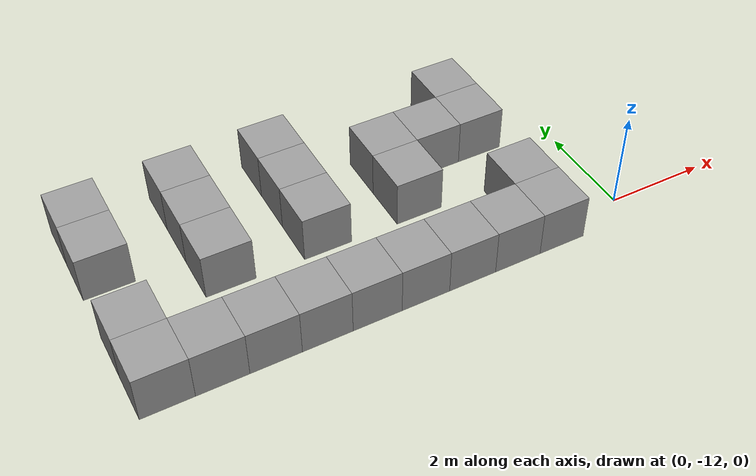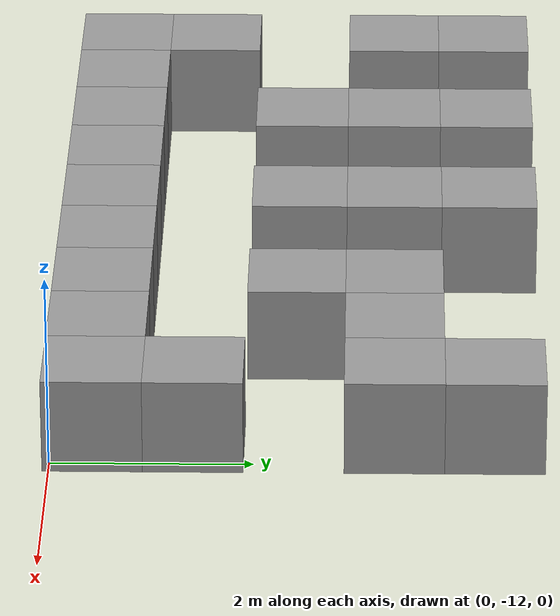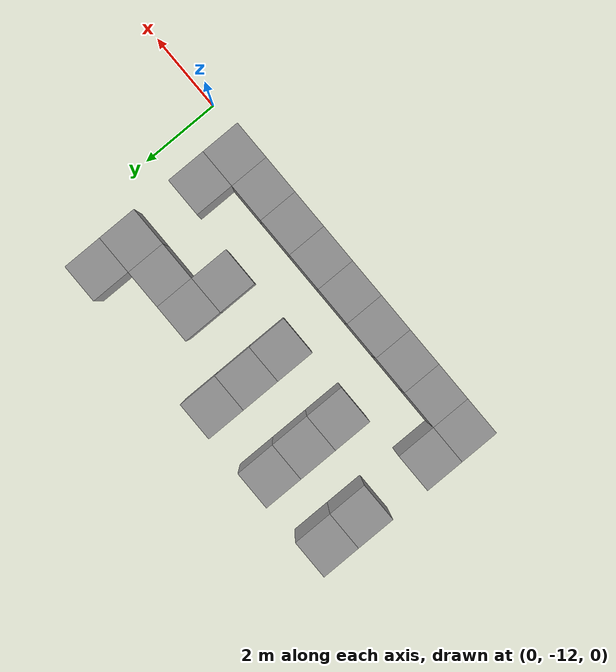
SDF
<sdf version="1.7">
 <model name="maze1">
  <link name="link_1_clone_127">
   <inertial>
    <mass>1</mass>
    <inertia>
     <ixx>0.166667</ixx>
     <ixy>0</ixy>
     <ixz>0</ixz>
     <iyy>0.166667</iyy>
     <iyz>0</iyz>
     <izz>0.166667</izz>
    </inertia>
   </inertial>
   <pose>-7.24618 -7.62535 -0 0 -0 0</pose>
   <visual name="visual">
    <geometry><box><size>1 1 1</size></box></geometry>
    <material>
     <lighting>1</lighting>
     <script><uri>file://media/materials/scripts/gazebo.material</uri><name>Gazebo/Grey</name></script>
     <shader type="pixel"><normal_map>__default__</normal_map></shader>
     <ambient>0.3 0.3 0.3 1</ambient>
     <diffuse>0.7 0.7 0.7 1</diffuse>
     <specular>0.01 0.01 0.01 1</specular>
     <emissive>0 0 0 1</emissive>
    </material>
   </visual>
   <collision name="collision">
    <geometry><box><size>1 1 1</size></box></geometry>
    <surface>
     <friction>
      <ode><mu>1</mu><mu2>1</mu2><fdir1>0 0 0</fdir1><slip1>0</slip1><slip2>0</slip2></ode>
      <torsional>
       <coefficient>1</coefficient>
       <patch_radius>0</patch_radius>
       <surface_radius>0</surface_radius>
       <use_patch_radius>1</use_patch_radius>
       <ode><slip>0</slip></ode>
      </torsional>
     </friction>
     <bounce><restitution_coefficient>0</restitution_coefficient><threshold>1e+06</threshold></bounce>
     <contact>
      <collide_without_contact>0</collide_without_contact>
      <collide_without_contact_bitmask>1</collide_without_contact_bitmask>
      <collide_bitmask>1</collide_bitmask>
      <ode>
       <soft_cfm>0</soft_cfm>
       <soft_erp>0.2</soft_erp>
       <kp>1e+13</kp>
       <kd>1</kd>
       <max_vel>0.01</max_vel>
       <min_depth>0</min_depth>
      </ode>
      <bullet>
       <split_impulse>1</split_impulse>
       <split_impulse_penetration_threshold>-0.01</split_impulse_penetration_threshold>
       <soft_cfm>0</soft_cfm>
       <soft_erp>0.2</soft_erp>
       <kp>1e+13</kp>
       <kd>1</kd>
      </bullet>
     </contact>
    </surface>
   </collision>
  </link>
  <link name="link_1_clone_128">
   <inertial>
    <mass>1</mass>
    <inertia>
     <ixx>0.166667</ixx>
     <ixy>0</ixy>
     <ixz>0</ixz>
     <iyy>0.166667</iyy>
     <iyz>0</iyz>
     <izz>0.166667</izz>
    </inertia>
   </inertial>
   <pose>-7.24618 -8.62535 -0 0 -0 0</pose>
   <visual name="visual">
    <geometry><box><size>1 1 1</size></box></geometry>
    <material>
     <lighting>1</lighting>
     <script><uri>file://media/materials/scripts/gazebo.material</uri><name>Gazebo/Grey</name></script>
     <shader type="pixel"><normal_map>__default__</normal_map></shader>
     <ambient>0.3 0.3 0.3 1</ambient>
     <diffuse>0.7 0.7 0.7 1</diffuse>
     <specular>0.01 0.01 0.01 1</specular>
     <emissive>0 0 0 1</emissive>
    </material>
   </visual>
   <collision name="collision">
    <geometry><box><size>1 1 1</size></box></geometry>
    <surface>
     <friction>
      <ode><mu>1</mu><mu2>1</mu2><fdir1>0 0 0</fdir1><slip1>0</slip1><slip2>0</slip2></ode>
      <torsional>
       <coefficient>1</coefficient>
       <patch_radius>0</patch_radius>
       <surface_radius>0</surface_radius>
       <use_patch_radius>1</use_patch_radius>
       <ode><slip>0</slip></ode>
      </torsional>
     </friction>
     <bounce><restitution_coefficient>0</restitution_coefficient><threshold>1e+06</threshold></bounce>
     <contact>
      <collide_without_contact>0</collide_without_contact>
      <collide_without_contact_bitmask>1</collide_without_contact_bitmask>
      <collide_bitmask>1</collide_bitmask>
      <ode>
       <soft_cfm>0</soft_cfm>
       <soft_erp>0.2</soft_erp>
       <kp>1e+13</kp>
       <kd>1</kd>
       <max_vel>0.01</max_vel>
       <min_depth>0</min_depth>
      </ode>
      <bullet>
       <split_impulse>1</split_impulse>
       <split_impulse_penetration_threshold>-0.01</split_impulse_penetration_threshold>
       <soft_cfm>0</soft_cfm>
       <soft_erp>0.2</soft_erp>
       <kp>1e+13</kp>
       <kd>1</kd>
      </bullet>
     </contact>
    </surface>
   </collision>
  </link>
  <link name="link_1_clone_129">
   <inertial>
    <mass>1</mass>
    <inertia>
     <ixx>0.166667</ixx>
     <ixy>0</ixy>
     <ixz>0</ixz>
     <iyy>0.166667</iyy>
     <iyz>0</iyz>
     <izz>0.166667</izz>
    </inertia>
   </inertial>
   <pose>-7.24618 -9.62535 -0 0 -0 0</pose>
   <visual name="visual">
    <geometry><box><size>1 1 1</size></box></geometry>
    <material>
     <lighting>1</lighting>
     <script><uri>file://media/materials/scripts/gazebo.material</uri><name>Gazebo/Grey</name></script>
     <shader type="pixel"><normal_map>__default__</normal_map></shader>
     <ambient>0.3 0.3 0.3 1</ambient>
     <diffuse>0.7 0.7 0.7 1</diffuse>
     <specular>0.01 0.01 0.01 1</specular>
     <emissive>0 0 0 1</emissive>
    </material>
   </visual>
   <collision name="collision">
    <geometry><box><size>1 1 1</size></box></geometry>
    <surface>
     <friction>
      <ode><mu>1</mu><mu2>1</mu2><fdir1>0 0 0</fdir1><slip1>0</slip1><slip2>0</slip2></ode>
      <torsional>
       <coefficient>1</coefficient>
       <patch_radius>0</patch_radius>
       <surface_radius>0</surface_radius>
       <use_patch_radius>1</use_patch_radius>
       <ode><slip>0</slip></ode>
      </torsional>
     </friction>
     <bounce><restitution_coefficient>0</restitution_coefficient><threshold>1e+06</threshold></bounce>
     <contact>
      <collide_without_contact>0</collide_without_contact>
      <collide_without_contact_bitmask>1</collide_without_contact_bitmask>
      <collide_bitmask>1</collide_bitmask>
      <ode>
       <soft_cfm>0</soft_cfm>
       <soft_erp>0.2</soft_erp>
       <kp>1e+13</kp>
       <kd>1</kd>
       <max_vel>0.01</max_vel>
       <min_depth>0</min_depth>
      </ode>
      <bullet>
       <split_impulse>1</split_impulse>
       <split_impulse_penetration_threshold>-0.01</split_impulse_penetration_threshold>
       <soft_cfm>0</soft_cfm>
       <soft_erp>0.2</soft_erp>
       <kp>1e+13</kp>
       <kd>1</kd>
      </bullet>
     </contact>
    </surface>
   </collision>
  </link>
  <link name="link_1_clone_131">
   <inertial>
    <mass>1</mass>
    <inertia>
     <ixx>0.166667</ixx>
     <ixy>0</ixy>
     <ixz>0</ixz>
     <iyy>0.166667</iyy>
     <iyz>0</iyz>
     <izz>0.166667</izz>
    </inertia>
   </inertial>
   <pose>-5.24618 -9.62535 -0 0 -0 0</pose>
   <visual name="visual">
    <geometry><box><size>1 1 1</size></box></geometry>
    <material>
     <lighting>1</lighting>
     <script><uri>file://media/materials/scripts/gazebo.material</uri><name>Gazebo/Grey</name></script>
     <shader type="pixel"><normal_map>__default__</normal_map></shader>
     <ambient>0.3 0.3 0.3 1</ambient>
     <diffuse>0.7 0.7 0.7 1</diffuse>
     <specular>0.01 0.01 0.01 1</specular>
     <emissive>0 0 0 1</emissive>
    </material>
   </visual>
   <collision name="collision">
    <geometry><box><size>1 1 1</size></box></geometry>
    <surface>
     <friction>
      <ode><mu>1</mu><mu2>1</mu2><fdir1>0 0 0</fdir1><slip1>0</slip1><slip2>0</slip2></ode>
      <torsional>
       <coefficient>1</coefficient>
       <patch_radius>0</patch_radius>
       <surface_radius>0</surface_radius>
       <use_patch_radius>1</use_patch_radius>
       <ode><slip>0</slip></ode>
      </torsional>
     </friction>
     <bounce><restitution_coefficient>0</restitution_coefficient><threshold>1e+06</threshold></bounce>
     <contact>
      <collide_without_contact>0</collide_without_contact>
      <collide_without_contact_bitmask>1</collide_without_contact_bitmask>
      <collide_bitmask>1</collide_bitmask>
      <ode>
       <soft_cfm>0</soft_cfm>
       <soft_erp>0.2</soft_erp>
       <kp>1e+13</kp>
       <kd>1</kd>
       <max_vel>0.01</max_vel>
       <min_depth>0</min_depth>
      </ode>
      <bullet>
       <split_impulse>1</split_impulse>
       <split_impulse_penetration_threshold>-0.01</split_impulse_penetration_threshold>
       <soft_cfm>0</soft_cfm>
       <soft_erp>0.2</soft_erp>
       <kp>1e+13</kp>
       <kd>1</kd>
      </bullet>
     </contact>
    </surface>
   </collision>
  </link>
  <link name="link_1_clone_132">
   <inertial>
    <mass>1</mass>
    <inertia>
     <ixx>0.166667</ixx>
     <ixy>0</ixy>
     <ixz>0</ixz>
     <iyy>0.166667</iyy>
     <iyz>0</iyz>
     <izz>0.166667</izz>
    </inertia>
   </inertial>
   <pose>-5.24618 -8.62535 -0 0 -0 0</pose>
   <visual name="visual">
    <geometry><box><size>1 1 1</size></box></geometry>
    <material>
     <lighting>1</lighting>
     <script><uri>file://media/materials/scripts/gazebo.material</uri><name>Gazebo/Grey</name></script>
     <shader type="pixel"><normal_map>__default__</normal_map></shader>
     <ambient>0.3 0.3 0.3 1</ambient>
     <diffuse>0.7 0.7 0.7 1</diffuse>
     <specular>0.01 0.01 0.01 1</specular>
     <emissive>0 0 0 1</emissive>
    </material>
   </visual>
   <collision name="collision">
    <geometry><box><size>1 1 1</size></box></geometry>
    <surface>
     <friction>
      <ode><mu>1</mu><mu2>1</mu2><fdir1>0 0 0</fdir1><slip1>0</slip1><slip2>0</slip2></ode>
      <torsional>
       <coefficient>1</coefficient>
       <patch_radius>0</patch_radius>
       <surface_radius>0</surface_radius>
       <use_patch_radius>1</use_patch_radius>
       <ode><slip>0</slip></ode>
      </torsional>
     </friction>
     <bounce><restitution_coefficient>0</restitution_coefficient><threshold>1e+06</threshold></bounce>
     <contact>
      <collide_without_contact>0</collide_without_contact>
      <collide_without_contact_bitmask>1</collide_without_contact_bitmask>
      <collide_bitmask>1</collide_bitmask>
      <ode>
       <soft_cfm>0</soft_cfm>
       <soft_erp>0.2</soft_erp>
       <kp>1e+13</kp>
       <kd>1</kd>
       <max_vel>0.01</max_vel>
       <min_depth>0</min_depth>
      </ode>
      <bullet>
       <split_impulse>1</split_impulse>
       <split_impulse_penetration_threshold>-0.01</split_impulse_penetration_threshold>
       <soft_cfm>0</soft_cfm>
       <soft_erp>0.2</soft_erp>
       <kp>1e+13</kp>
       <kd>1</kd>
      </bullet>
     </contact>
    </surface>
   </collision>
  </link>
  <link name="link_1_clone_197">
   <inertial>
    <mass>1</mass>
    <inertia>
     <ixx>0.166667</ixx>
     <ixy>0</ixy>
     <ixz>0</ixz>
     <iyy>0.166667</iyy>
     <iyz>0</iyz>
     <izz>0.166667</izz>
    </inertia>
   </inertial>
   <pose>-1.24618 -7.62535 -0 0 -0 0</pose>
   <visual name="visual">
    <geometry><box><size>1 1 1</size></box></geometry>
    <material>
     <lighting>1</lighting>
     <script><uri>file://media/materials/scripts/gazebo.material</uri><name>Gazebo/Grey</name></script>
     <shader type="pixel"><normal_map>__default__</normal_map></shader>
     <ambient>0.3 0.3 0.3 1</ambient>
     <diffuse>0.7 0.7 0.7 1</diffuse>
     <specular>0.01 0.01 0.01 1</specular>
     <emissive>0 0 0 1</emissive>
    </material>
   </visual>
   <collision name="collision">
    <geometry><box><size>1 1 1</size></box></geometry>
    <surface>
     <friction>
      <ode><mu>1</mu><mu2>1</mu2><fdir1>0 0 0</fdir1><slip1>0</slip1><slip2>0</slip2></ode>
      <torsional>
       <coefficient>1</coefficient>
       <patch_radius>0</patch_radius>
       <surface_radius>0</surface_radius>
       <use_patch_radius>1</use_patch_radius>
       <ode><slip>0</slip></ode>
      </torsional>
     </friction>
     <bounce><restitution_coefficient>0</restitution_coefficient><threshold>1e+06</threshold></bounce>
     <contact>
      <collide_without_contact>0</collide_without_contact>
      <collide_without_contact_bitmask>1</collide_without_contact_bitmask>
      <collide_bitmask>1</collide_bitmask>
      <ode>
       <soft_cfm>0</soft_cfm>
       <soft_erp>0.2</soft_erp>
       <kp>1e+13</kp>
       <kd>1</kd>
       <max_vel>0.01</max_vel>
       <min_depth>0</min_depth>
      </ode>
      <bullet>
       <split_impulse>1</split_impulse>
       <split_impulse_penetration_threshold>-0.01</split_impulse_penetration_threshold>
       <soft_cfm>0</soft_cfm>
       <soft_erp>0.2</soft_erp>
       <kp>1e+13</kp>
       <kd>1</kd>
      </bullet>
     </contact>
    </surface>
   </collision>
  </link>
  <link name="link_1_clone_198">
   <inertial>
    <mass>1</mass>
    <inertia>
     <ixx>0.166667</ixx>
     <ixy>0</ixy>
     <ixz>0</ixz>
     <iyy>0.166667</iyy>
     <iyz>0</iyz>
     <izz>0.166667</izz>
    </inertia>
   </inertial>
   <pose>-1.24618 -8.62535 -0 0 -0 0</pose>
   <visual name="visual">
    <geometry><box><size>1 1 1</size></box></geometry>
    <material>
     <lighting>1</lighting>
     <script><uri>file://media/materials/scripts/gazebo.material</uri><name>Gazebo/Grey</name></script>
     <shader type="pixel"><normal_map>__default__</normal_map></shader>
     <ambient>0.3 0.3 0.3 1</ambient>
     <diffuse>0.7 0.7 0.7 1</diffuse>
     <specular>0.01 0.01 0.01 1</specular>
     <emissive>0 0 0 1</emissive>
    </material>
   </visual>
   <collision name="collision">
    <geometry><box><size>1 1 1</size></box></geometry>
    <surface>
     <friction>
      <ode><mu>1</mu><mu2>1</mu2><fdir1>0 0 0</fdir1><slip1>0</slip1><slip2>0</slip2></ode>
      <torsional>
       <coefficient>1</coefficient>
       <patch_radius>0</patch_radius>
       <surface_radius>0</surface_radius>
       <use_patch_radius>1</use_patch_radius>
       <ode><slip>0</slip></ode>
      </torsional>
     </friction>
     <bounce><restitution_coefficient>0</restitution_coefficient><threshold>1e+06</threshold></bounce>
     <contact>
      <collide_without_contact>0</collide_without_contact>
      <collide_without_contact_bitmask>1</collide_without_contact_bitmask>
      <collide_bitmask>1</collide_bitmask>
      <ode>
       <soft_cfm>0</soft_cfm>
       <soft_erp>0.2</soft_erp>
       <kp>1e+13</kp>
       <kd>1</kd>
       <max_vel>0.01</max_vel>
       <min_depth>0</min_depth>
      </ode>
      <bullet>
       <split_impulse>1</split_impulse>
       <split_impulse_penetration_threshold>-0.01</split_impulse_penetration_threshold>
       <soft_cfm>0</soft_cfm>
       <soft_erp>0.2</soft_erp>
       <kp>1e+13</kp>
       <kd>1</kd>
      </bullet>
     </contact>
    </surface>
   </collision>
  </link>
  <link name="link_1_clone_199">
   <inertial>
    <mass>1</mass>
    <inertia>
     <ixx>0.166667</ixx>
     <ixy>0</ixy>
     <ixz>0</ixz>
     <iyy>0.166667</iyy>
     <iyz>0</iyz>
     <izz>0.166667</izz>
    </inertia>
   </inertial>
   <pose>-1.24618 -10.6254 -0 0 -0 0</pose>
   <visual name="visual">
    <geometry><box><size>1 1 1</size></box></geometry>
    <material>
     <lighting>1</lighting>
     <script><uri>file://media/materials/scripts/gazebo.material</uri><name>Gazebo/Grey</name></script>
     <shader type="pixel"><normal_map>__default__</normal_map></shader>
     <ambient>0.3 0.3 0.3 1</ambient>
     <diffuse>0.7 0.7 0.7 1</diffuse>
     <specular>0.01 0.01 0.01 1</specular>
     <emissive>0 0 0 1</emissive>
    </material>
   </visual>
   <collision name="collision">
    <geometry><box><size>1 1 1</size></box></geometry>
    <surface>
     <friction>
      <ode><mu>1</mu><mu2>1</mu2><fdir1>0 0 0</fdir1><slip1>0</slip1><slip2>0</slip2></ode>
      <torsional>
       <coefficient>1</coefficient>
       <patch_radius>0</patch_radius>
       <surface_radius>0</surface_radius>
       <use_patch_radius>1</use_patch_radius>
       <ode><slip>0</slip></ode>
      </torsional>
     </friction>
     <bounce><restitution_coefficient>0</restitution_coefficient><threshold>1e+06</threshold></bounce>
     <contact>
      <collide_without_contact>0</collide_without_contact>
      <collide_without_contact_bitmask>1</collide_without_contact_bitmask>
      <collide_bitmask>1</collide_bitmask>
      <ode>
       <soft_cfm>0</soft_cfm>
       <soft_erp>0.2</soft_erp>
       <kp>1e+13</kp>
       <kd>1</kd>
       <max_vel>0.01</max_vel>
       <min_depth>0</min_depth>
      </ode>
      <bullet>
       <split_impulse>1</split_impulse>
       <split_impulse_penetration_threshold>-0.01</split_impulse_penetration_threshold>
       <soft_cfm>0</soft_cfm>
       <soft_erp>0.2</soft_erp>
       <kp>1e+13</kp>
       <kd>1</kd>
      </bullet>
     </contact>
    </surface>
   </collision>
  </link>
  <link name="link_1_clone_203">
   <inertial>
    <mass>1</mass>
    <inertia>
     <ixx>0.166667</ixx>
     <ixy>0</ixy>
     <ixz>0</ixz>
     <iyy>0.166667</iyy>
     <iyz>0</iyz>
     <izz>0.166667</izz>
    </inertia>
   </inertial>
   <pose>-2.24618 -8.62535 -0 0 -0 0</pose>
   <visual name="visual">
    <geometry><box><size>1 1 1</size></box></geometry>
    <material>
     <lighting>1</lighting>
     <script><uri>file://media/materials/scripts/gazebo.material</uri><name>Gazebo/Grey</name></script>
     <shader type="pixel"><normal_map>__default__</normal_map></shader>
     <ambient>0.3 0.3 0.3 1</ambient>
     <diffuse>0.7 0.7 0.7 1</diffuse>
     <specular>0.01 0.01 0.01 1</specular>
     <emissive>0 0 0 1</emissive>
    </material>
   </visual>
   <collision name="collision">
    <geometry><box><size>1 1 1</size></box></geometry>
    <surface>
     <friction>
      <ode><mu>1</mu><mu2>1</mu2><fdir1>0 0 0</fdir1><slip1>0</slip1><slip2>0</slip2></ode>
      <torsional>
       <coefficient>1</coefficient>
       <patch_radius>0</patch_radius>
       <surface_radius>0</surface_radius>
       <use_patch_radius>1</use_patch_radius>
       <ode><slip>0</slip></ode>
      </torsional>
     </friction>
     <bounce><restitution_coefficient>0</restitution_coefficient><threshold>1e+06</threshold></bounce>
     <contact>
      <collide_without_contact>0</collide_without_contact>
      <collide_without_contact_bitmask>1</collide_without_contact_bitmask>
      <collide_bitmask>1</collide_bitmask>
      <ode>
       <soft_cfm>0</soft_cfm>
       <soft_erp>0.2</soft_erp>
       <kp>1e+13</kp>
       <kd>1</kd>
       <max_vel>0.01</max_vel>
       <min_depth>0</min_depth>
      </ode>
      <bullet>
       <split_impulse>1</split_impulse>
       <split_impulse_penetration_threshold>-0.01</split_impulse_penetration_threshold>
       <soft_cfm>0</soft_cfm>
       <soft_erp>0.2</soft_erp>
       <kp>1e+13</kp>
       <kd>1</kd>
      </bullet>
     </contact>
    </surface>
   </collision>
  </link>
  <link name="link_1_clone_204">
   <inertial>
    <mass>1</mass>
    <inertia>
     <ixx>0.166667</ixx>
     <ixy>0</ixy>
     <ixz>0</ixz>
     <iyy>0.166667</iyy>
     <iyz>0</iyz>
     <izz>0.166667</izz>
    </inertia>
   </inertial>
   <pose>-3.24618 -8.62535 -0 0 -0 0</pose>
   <visual name="visual">
    <geometry><box><size>1 1 1</size></box></geometry>
    <material>
     <lighting>1</lighting>
     <script><uri>file://media/materials/scripts/gazebo.material</uri><name>Gazebo/Grey</name></script>
     <shader type="pixel"><normal_map>__default__</normal_map></shader>
     <ambient>0.3 0.3 0.3 1</ambient>
     <diffuse>0.7 0.7 0.7 1</diffuse>
     <specular>0.01 0.01 0.01 1</specular>
     <emissive>0 0 0 1</emissive>
    </material>
   </visual>
   <collision name="collision">
    <geometry><box><size>1 1 1</size></box></geometry>
    <surface>
     <friction>
      <ode><mu>1</mu><mu2>1</mu2><fdir1>0 0 0</fdir1><slip1>0</slip1><slip2>0</slip2></ode>
      <torsional>
       <coefficient>1</coefficient>
       <patch_radius>0</patch_radius>
       <surface_radius>0</surface_radius>
       <use_patch_radius>1</use_patch_radius>
       <ode><slip>0</slip></ode>
      </torsional>
     </friction>
     <bounce><restitution_coefficient>0</restitution_coefficient><threshold>1e+06</threshold></bounce>
     <contact>
      <collide_without_contact>0</collide_without_contact>
      <collide_without_contact_bitmask>1</collide_without_contact_bitmask>
      <collide_bitmask>1</collide_bitmask>
      <ode>
       <soft_cfm>0</soft_cfm>
       <soft_erp>0.2</soft_erp>
       <kp>1e+13</kp>
       <kd>1</kd>
       <max_vel>0.01</max_vel>
       <min_depth>0</min_depth>
      </ode>
      <bullet>
       <split_impulse>1</split_impulse>
       <split_impulse_penetration_threshold>-0.01</split_impulse_penetration_threshold>
       <soft_cfm>0</soft_cfm>
       <soft_erp>0.2</soft_erp>
       <kp>1e+13</kp>
       <kd>1</kd>
      </bullet>
     </contact>
    </surface>
   </collision>
  </link>
  <link name="link_1_clone_205">
   <inertial>
    <mass>1</mass>
    <inertia>
     <ixx>0.166667</ixx>
     <ixy>0</ixy>
     <ixz>0</ixz>
     <iyy>0.166667</iyy>
     <iyz>0</iyz>
     <izz>0.166667</izz>
    </inertia>
   </inertial>
   <pose>-3.24618 -9.62535 -0 0 -0 0</pose>
   <visual name="visual">
    <geometry><box><size>1 1 1</size></box></geometry>
    <material>
     <lighting>1</lighting>
     <script><uri>file://media/materials/scripts/gazebo.material</uri><name>Gazebo/Grey</name></script>
     <shader type="pixel"><normal_map>__default__</normal_map></shader>
     <ambient>0.3 0.3 0.3 1</ambient>
     <diffuse>0.7 0.7 0.7 1</diffuse>
     <specular>0.01 0.01 0.01 1</specular>
     <emissive>0 0 0 1</emissive>
    </material>
   </visual>
   <collision name="collision">
    <geometry><box><size>1 1 1</size></box></geometry>
    <surface>
     <friction>
      <ode><mu>1</mu><mu2>1</mu2><fdir1>0 0 0</fdir1><slip1>0</slip1><slip2>0</slip2></ode>
      <torsional>
       <coefficient>1</coefficient>
       <patch_radius>0</patch_radius>
       <surface_radius>0</surface_radius>
       <use_patch_radius>1</use_patch_radius>
       <ode><slip>0</slip></ode>
      </torsional>
     </friction>
     <bounce><restitution_coefficient>0</restitution_coefficient><threshold>1e+06</threshold></bounce>
     <contact>
      <collide_without_contact>0</collide_without_contact>
      <collide_without_contact_bitmask>1</collide_without_contact_bitmask>
      <collide_bitmask>1</collide_bitmask>
      <ode>
       <soft_cfm>0</soft_cfm>
       <soft_erp>0.2</soft_erp>
       <kp>1e+13</kp>
       <kd>1</kd>
       <max_vel>0.01</max_vel>
       <min_depth>0</min_depth>
      </ode>
      <bullet>
       <split_impulse>1</split_impulse>
       <split_impulse_penetration_threshold>-0.01</split_impulse_penetration_threshold>
       <soft_cfm>0</soft_cfm>
       <soft_erp>0.2</soft_erp>
       <kp>1e+13</kp>
       <kd>1</kd>
      </bullet>
     </contact>
    </surface>
   </collision>
  </link>
  <link name="link_1_clone_214">
   <inertial>
    <mass>1</mass>
    <inertia>
     <ixx>0.166667</ixx>
     <ixy>0</ixy>
     <ixz>0</ixz>
     <iyy>0.166667</iyy>
     <iyz>0</iyz>
     <izz>0.166667</izz>
    </inertia>
   </inertial>
   <pose>-5.24618 -7.62535 -0 0 -0 0</pose>
   <visual name="visual">
    <geometry><box><size>1 1 1</size></box></geometry>
    <material>
     <lighting>1</lighting>
     <script><uri>file://media/materials/scripts/gazebo.material</uri><name>Gazebo/Grey</name></script>
     <shader type="pixel"><normal_map>__default__</normal_map></shader>
     <ambient>0.3 0.3 0.3 1</ambient>
     <diffuse>0.7 0.7 0.7 1</diffuse>
     <specular>0.01 0.01 0.01 1</specular>
     <emissive>0 0 0 1</emissive>
    </material>
   </visual>
   <collision name="collision">
    <geometry><box><size>1 1 1</size></box></geometry>
    <surface>
     <friction>
      <ode><mu>1</mu><mu2>1</mu2><fdir1>0 0 0</fdir1><slip1>0</slip1><slip2>0</slip2></ode>
      <torsional>
       <coefficient>1</coefficient>
       <patch_radius>0</patch_radius>
       <surface_radius>0</surface_radius>
       <use_patch_radius>1</use_patch_radius>
       <ode><slip>0</slip></ode>
      </torsional>
     </friction>
     <bounce><restitution_coefficient>0</restitution_coefficient><threshold>1e+06</threshold></bounce>
     <contact>
      <collide_without_contact>0</collide_without_contact>
      <collide_without_contact_bitmask>1</collide_without_contact_bitmask>
      <collide_bitmask>1</collide_bitmask>
      <ode>
       <soft_cfm>0</soft_cfm>
       <soft_erp>0.2</soft_erp>
       <kp>1e+13</kp>
       <kd>1</kd>
       <max_vel>0.01</max_vel>
       <min_depth>0</min_depth>
      </ode>
      <bullet>
       <split_impulse>1</split_impulse>
       <split_impulse_penetration_threshold>-0.01</split_impulse_penetration_threshold>
       <soft_cfm>0</soft_cfm>
       <soft_erp>0.2</soft_erp>
       <kp>1e+13</kp>
       <kd>1</kd>
      </bullet>
     </contact>
    </surface>
   </collision>
  </link>
  <link name="link_1_clone_32">
   <inertial>
    <mass>1</mass>
    <inertia>
     <ixx>0.166667</ixx>
     <ixy>0</ixy>
     <ixz>0</ixz>
     <iyy>0.166667</iyy>
     <iyz>0</iyz>
     <izz>0.166667</izz>
    </inertia>
   </inertial>
   <pose>-9.24618 -7.62535 -0 0 -0 0</pose>
   <visual name="visual">
    <geometry><box><size>1 1 1</size></box></geometry>
    <material>
     <lighting>1</lighting>
     <script><uri>file://media/materials/scripts/gazebo.material</uri><name>Gazebo/Grey</name></script>
     <shader type="pixel"><normal_map>__default__</normal_map></shader>
     <ambient>0.3 0.3 0.3 1</ambient>
     <diffuse>0.7 0.7 0.7 1</diffuse>
     <specular>0.01 0.01 0.01 1</specular>
     <emissive>0 0 0 1</emissive>
    </material>
   </visual>
   <collision name="collision">
    <geometry><box><size>1 1 1</size></box></geometry>
    <surface>
     <friction>
      <ode><mu>1</mu><mu2>1</mu2><fdir1>0 0 0</fdir1><slip1>0</slip1><slip2>0</slip2></ode>
      <torsional>
       <coefficient>1</coefficient>
       <patch_radius>0</patch_radius>
       <surface_radius>0</surface_radius>
       <use_patch_radius>1</use_patch_radius>
       <ode><slip>0</slip></ode>
      </torsional>
     </friction>
     <bounce><restitution_coefficient>0</restitution_coefficient><threshold>1e+06</threshold></bounce>
     <contact>
      <collide_without_contact>0</collide_without_contact>
      <collide_without_contact_bitmask>1</collide_without_contact_bitmask>
      <collide_bitmask>1</collide_bitmask>
      <ode>
       <soft_cfm>0</soft_cfm>
       <soft_erp>0.2</soft_erp>
       <kp>1e+13</kp>
       <kd>1</kd>
       <max_vel>0.01</max_vel>
       <min_depth>0</min_depth>
      </ode>
      <bullet>
       <split_impulse>1</split_impulse>
       <split_impulse_penetration_threshold>-0.01</split_impulse_penetration_threshold>
       <soft_cfm>0</soft_cfm>
       <soft_erp>0.2</soft_erp>
       <kp>1e+13</kp>
       <kd>1</kd>
      </bullet>
     </contact>
    </surface>
   </collision>
  </link>
  <link name="link_1_clone_33">
   <inertial>
    <mass>1</mass>
    <inertia>
     <ixx>0.166667</ixx>
     <ixy>0</ixy>
     <ixz>0</ixz>
     <iyy>0.166667</iyy>
     <iyz>0</iyz>
     <izz>0.166667</izz>
    </inertia>
   </inertial>
   <pose>-9.24618 -8.62535 -0 0 -0 0</pose>
   <visual name="visual">
    <geometry><box><size>1 1 1</size></box></geometry>
    <material>
     <lighting>1</lighting>
     <script><uri>file://media/materials/scripts/gazebo.material</uri><name>Gazebo/Grey</name></script>
     <shader type="pixel"><normal_map>__default__</normal_map></shader>
     <ambient>0.3 0.3 0.3 1</ambient>
     <diffuse>0.7 0.7 0.7 1</diffuse>
     <specular>0.01 0.01 0.01 1</specular>
     <emissive>0 0 0 1</emissive>
    </material>
   </visual>
   <collision name="collision">
    <geometry><box><size>1 1 1</size></box></geometry>
    <surface>
     <friction>
      <ode><mu>1</mu><mu2>1</mu2><fdir1>0 0 0</fdir1><slip1>0</slip1><slip2>0</slip2></ode>
      <torsional>
       <coefficient>1</coefficient>
       <patch_radius>0</patch_radius>
       <surface_radius>0</surface_radius>
       <use_patch_radius>1</use_patch_radius>
       <ode><slip>0</slip></ode>
      </torsional>
     </friction>
     <bounce><restitution_coefficient>0</restitution_coefficient><threshold>1e+06</threshold></bounce>
     <contact>
      <collide_without_contact>0</collide_without_contact>
      <collide_without_contact_bitmask>1</collide_without_contact_bitmask>
      <collide_bitmask>1</collide_bitmask>
      <ode>
       <soft_cfm>0</soft_cfm>
       <soft_erp>0.2</soft_erp>
       <kp>1e+13</kp>
       <kd>1</kd>
       <max_vel>0.01</max_vel>
       <min_depth>0</min_depth>
      </ode>
      <bullet>
       <split_impulse>1</split_impulse>
       <split_impulse_penetration_threshold>-0.01</split_impulse_penetration_threshold>
       <soft_cfm>0</soft_cfm>
       <soft_erp>0.2</soft_erp>
       <kp>1e+13</kp>
       <kd>1</kd>
      </bullet>
     </contact>
    </surface>
   </collision>
  </link>
  <link name="link_1_clone_34">
   <inertial>
    <mass>1</mass>
    <inertia>
     <ixx>0.166667</ixx>
     <ixy>0</ixy>
     <ixz>0</ixz>
     <iyy>0.166667</iyy>
     <iyz>0</iyz>
     <izz>0.166667</izz>
    </inertia>
   </inertial>
   <pose>-9.24618 -10.6253 -0 0 -0 0</pose>
   <visual name="visual">
    <geometry><box><size>1 1 1</size></box></geometry>
    <material>
     <lighting>1</lighting>
     <script><uri>file://media/materials/scripts/gazebo.material</uri><name>Gazebo/Grey</name></script>
     <shader type="pixel"><normal_map>__default__</normal_map></shader>
     <ambient>0.3 0.3 0.3 1</ambient>
     <diffuse>0.7 0.7 0.7 1</diffuse>
     <specular>0.01 0.01 0.01 1</specular>
     <emissive>0 0 0 1</emissive>
    </material>
   </visual>
   <collision name="collision">
    <geometry><box><size>1 1 1</size></box></geometry>
    <surface>
     <friction>
      <ode><mu>1</mu><mu2>1</mu2><fdir1>0 0 0</fdir1><slip1>0</slip1><slip2>0</slip2></ode>
      <torsional>
       <coefficient>1</coefficient>
       <patch_radius>0</patch_radius>
       <surface_radius>0</surface_radius>
       <use_patch_radius>1</use_patch_radius>
       <ode><slip>0</slip></ode>
      </torsional>
     </friction>
     <bounce><restitution_coefficient>0</restitution_coefficient><threshold>1e+06</threshold></bounce>
     <contact>
      <collide_without_contact>0</collide_without_contact>
      <collide_without_contact_bitmask>1</collide_without_contact_bitmask>
      <collide_bitmask>1</collide_bitmask>
      <ode>
       <soft_cfm>0</soft_cfm>
       <soft_erp>0.2</soft_erp>
       <kp>1e+13</kp>
       <kd>1</kd>
       <max_vel>0.01</max_vel>
       <min_depth>0</min_depth>
      </ode>
      <bullet>
       <split_impulse>1</split_impulse>
       <split_impulse_penetration_threshold>-0.01</split_impulse_penetration_threshold>
       <soft_cfm>0</soft_cfm>
       <soft_erp>0.2</soft_erp>
       <kp>1e+13</kp>
       <kd>1</kd>
      </bullet>
     </contact>
    </surface>
   </collision>
  </link>
  <link name="link_1_clone_35">
   <inertial>
    <mass>1</mass>
    <inertia>
     <ixx>0.166667</ixx>
     <ixy>0</ixy>
     <ixz>0</ixz>
     <iyy>0.166667</iyy>
     <iyz>0</iyz>
     <izz>0.166667</izz>
    </inertia>
   </inertial>
   <pose>-8.24618 -11.6253 -0 0 -0 0</pose>
   <visual name="visual">
    <geometry><box><size>1 1 1</size></box></geometry>
    <material>
     <lighting>1</lighting>
     <script><uri>file://media/materials/scripts/gazebo.material</uri><name>Gazebo/Grey</name></script>
     <shader type="pixel"><normal_map>__default__</normal_map></shader>
     <ambient>0.3 0.3 0.3 1</ambient>
     <diffuse>0.7 0.7 0.7 1</diffuse>
     <specular>0.01 0.01 0.01 1</specular>
     <emissive>0 0 0 1</emissive>
    </material>
   </visual>
   <collision name="collision">
    <geometry><box><size>1 1 1</size></box></geometry>
    <surface>
     <friction>
      <ode><mu>1</mu><mu2>1</mu2><fdir1>0 0 0</fdir1><slip1>0</slip1><slip2>0</slip2></ode>
      <torsional>
       <coefficient>1</coefficient>
       <patch_radius>0</patch_radius>
       <surface_radius>0</surface_radius>
       <use_patch_radius>1</use_patch_radius>
       <ode><slip>0</slip></ode>
      </torsional>
     </friction>
     <bounce><restitution_coefficient>0</restitution_coefficient><threshold>1e+06</threshold></bounce>
     <contact>
      <collide_without_contact>0</collide_without_contact>
      <collide_without_contact_bitmask>1</collide_without_contact_bitmask>
      <collide_bitmask>1</collide_bitmask>
      <ode>
       <soft_cfm>0</soft_cfm>
       <soft_erp>0.2</soft_erp>
       <kp>1e+13</kp>
       <kd>1</kd>
       <max_vel>0.01</max_vel>
       <min_depth>0</min_depth>
      </ode>
      <bullet>
       <split_impulse>1</split_impulse>
       <split_impulse_penetration_threshold>-0.01</split_impulse_penetration_threshold>
       <soft_cfm>0</soft_cfm>
       <soft_erp>0.2</soft_erp>
       <kp>1e+13</kp>
       <kd>1</kd>
      </bullet>
     </contact>
    </surface>
   </collision>
  </link>
  <link name="link_1_clone_36">
   <inertial>
    <mass>1</mass>
    <inertia>
     <ixx>0.166667</ixx>
     <ixy>0</ixy>
     <ixz>0</ixz>
     <iyy>0.166667</iyy>
     <iyz>0</iyz>
     <izz>0.166667</izz>
    </inertia>
   </inertial>
   <pose>-9.24618 -11.6253 -0 0 -0 0</pose>
   <visual name="visual">
    <geometry><box><size>1 1 1</size></box></geometry>
    <material>
     <lighting>1</lighting>
     <script><uri>file://media/materials/scripts/gazebo.material</uri><name>Gazebo/Grey</name></script>
     <shader type="pixel"><normal_map>__default__</normal_map></shader>
     <ambient>0.3 0.3 0.3 1</ambient>
     <diffuse>0.7 0.7 0.7 1</diffuse>
     <specular>0.01 0.01 0.01 1</specular>
     <emissive>0 0 0 1</emissive>
    </material>
   </visual>
   <collision name="collision">
    <geometry><box><size>1 1 1</size></box></geometry>
    <surface>
     <friction>
      <ode><mu>1</mu><mu2>1</mu2><fdir1>0 0 0</fdir1><slip1>0</slip1><slip2>0</slip2></ode>
      <torsional>
       <coefficient>1</coefficient>
       <patch_radius>0</patch_radius>
       <surface_radius>0</surface_radius>
       <use_patch_radius>1</use_patch_radius>
       <ode><slip>0</slip></ode>
      </torsional>
     </friction>
     <bounce><restitution_coefficient>0</restitution_coefficient><threshold>1e+06</threshold></bounce>
     <contact>
      <collide_without_contact>0</collide_without_contact>
      <collide_without_contact_bitmask>1</collide_without_contact_bitmask>
      <collide_bitmask>1</collide_bitmask>
      <ode>
       <soft_cfm>0</soft_cfm>
       <soft_erp>0.2</soft_erp>
       <kp>1e+13</kp>
       <kd>1</kd>
       <max_vel>0.01</max_vel>
       <min_depth>0</min_depth>
      </ode>
      <bullet>
       <split_impulse>1</split_impulse>
       <split_impulse_penetration_threshold>-0.01</split_impulse_penetration_threshold>
       <soft_cfm>0</soft_cfm>
       <soft_erp>0.2</soft_erp>
       <kp>1e+13</kp>
       <kd>1</kd>
      </bullet>
     </contact>
    </surface>
   </collision>
  </link>
  <link name="link_1_clone_37">
   <inertial>
    <mass>1</mass>
    <inertia>
     <ixx>0.166667</ixx>
     <ixy>0</ixy>
     <ixz>0</ixz>
     <iyy>0.166667</iyy>
     <iyz>0</iyz>
     <izz>0.166667</izz>
    </inertia>
   </inertial>
   <pose>-7.24618 -11.6253 -0 0 -0 0</pose>
   <visual name="visual">
    <geometry><box><size>1 1 1</size></box></geometry>
    <material>
     <lighting>1</lighting>
     <script><uri>file://media/materials/scripts/gazebo.material</uri><name>Gazebo/Grey</name></script>
     <shader type="pixel"><normal_map>__default__</normal_map></shader>
     <ambient>0.3 0.3 0.3 1</ambient>
     <diffuse>0.7 0.7 0.7 1</diffuse>
     <specular>0.01 0.01 0.01 1</specular>
     <emissive>0 0 0 1</emissive>
    </material>
   </visual>
   <collision name="collision">
    <geometry><box><size>1 1 1</size></box></geometry>
    <surface>
     <friction>
      <ode><mu>1</mu><mu2>1</mu2><fdir1>0 0 0</fdir1><slip1>0</slip1><slip2>0</slip2></ode>
      <torsional>
       <coefficient>1</coefficient>
       <patch_radius>0</patch_radius>
       <surface_radius>0</surface_radius>
       <use_patch_radius>1</use_patch_radius>
       <ode><slip>0</slip></ode>
      </torsional>
     </friction>
     <bounce><restitution_coefficient>0</restitution_coefficient><threshold>1e+06</threshold></bounce>
     <contact>
      <collide_without_contact>0</collide_without_contact>
      <collide_without_contact_bitmask>1</collide_without_contact_bitmask>
      <collide_bitmask>1</collide_bitmask>
      <ode>
       <soft_cfm>0</soft_cfm>
       <soft_erp>0.2</soft_erp>
       <kp>1e+13</kp>
       <kd>1</kd>
       <max_vel>0.01</max_vel>
       <min_depth>0</min_depth>
      </ode>
      <bullet>
       <split_impulse>1</split_impulse>
       <split_impulse_penetration_threshold>-0.01</split_impulse_penetration_threshold>
       <soft_cfm>0</soft_cfm>
       <soft_erp>0.2</soft_erp>
       <kp>1e+13</kp>
       <kd>1</kd>
      </bullet>
     </contact>
    </surface>
   </collision>
  </link>
  <link name="link_1_clone_38">
   <inertial>
    <mass>1</mass>
    <inertia>
     <ixx>0.166667</ixx>
     <ixy>0</ixy>
     <ixz>0</ixz>
     <iyy>0.166667</iyy>
     <iyz>0</iyz>
     <izz>0.166667</izz>
    </inertia>
   </inertial>
   <pose>-6.24618 -11.6253 -0 0 -0 0</pose>
   <visual name="visual">
    <geometry><box><size>1 1 1</size></box></geometry>
    <material>
     <lighting>1</lighting>
     <script><uri>file://media/materials/scripts/gazebo.material</uri><name>Gazebo/Grey</name></script>
     <shader type="pixel"><normal_map>__default__</normal_map></shader>
     <ambient>0.3 0.3 0.3 1</ambient>
     <diffuse>0.7 0.7 0.7 1</diffuse>
     <specular>0.01 0.01 0.01 1</specular>
     <emissive>0 0 0 1</emissive>
    </material>
   </visual>
   <collision name="collision">
    <geometry><box><size>1 1 1</size></box></geometry>
    <surface>
     <friction>
      <ode><mu>1</mu><mu2>1</mu2><fdir1>0 0 0</fdir1><slip1>0</slip1><slip2>0</slip2></ode>
      <torsional>
       <coefficient>1</coefficient>
       <patch_radius>0</patch_radius>
       <surface_radius>0</surface_radius>
       <use_patch_radius>1</use_patch_radius>
       <ode><slip>0</slip></ode>
      </torsional>
     </friction>
     <bounce><restitution_coefficient>0</restitution_coefficient><threshold>1e+06</threshold></bounce>
     <contact>
      <collide_without_contact>0</collide_without_contact>
      <collide_without_contact_bitmask>1</collide_without_contact_bitmask>
      <collide_bitmask>1</collide_bitmask>
      <ode>
       <soft_cfm>0</soft_cfm>
       <soft_erp>0.2</soft_erp>
       <kp>1e+13</kp>
       <kd>1</kd>
       <max_vel>0.01</max_vel>
       <min_depth>0</min_depth>
      </ode>
      <bullet>
       <split_impulse>1</split_impulse>
       <split_impulse_penetration_threshold>-0.01</split_impulse_penetration_threshold>
       <soft_cfm>0</soft_cfm>
       <soft_erp>0.2</soft_erp>
       <kp>1e+13</kp>
       <kd>1</kd>
      </bullet>
     </contact>
    </surface>
   </collision>
  </link>
  <link name="link_1_clone_39">
   <inertial>
    <mass>1</mass>
    <inertia>
     <ixx>0.166667</ixx>
     <ixy>0</ixy>
     <ixz>0</ixz>
     <iyy>0.166667</iyy>
     <iyz>0</iyz>
     <izz>0.166667</izz>
    </inertia>
   </inertial>
   <pose>-5.24618 -11.6253 -0 0 -0 0</pose>
   <visual name="visual">
    <geometry><box><size>1 1 1</size></box></geometry>
    <material>
     <lighting>1</lighting>
     <script><uri>file://media/materials/scripts/gazebo.material</uri><name>Gazebo/Grey</name></script>
     <shader type="pixel"><normal_map>__default__</normal_map></shader>
     <ambient>0.3 0.3 0.3 1</ambient>
     <diffuse>0.7 0.7 0.7 1</diffuse>
     <specular>0.01 0.01 0.01 1</specular>
     <emissive>0 0 0 1</emissive>
    </material>
   </visual>
   <collision name="collision">
    <geometry><box><size>1 1 1</size></box></geometry>
    <surface>
     <friction>
      <ode><mu>1</mu><mu2>1</mu2><fdir1>0 0 0</fdir1><slip1>0</slip1><slip2>0</slip2></ode>
      <torsional>
       <coefficient>1</coefficient>
       <patch_radius>0</patch_radius>
       <surface_radius>0</surface_radius>
       <use_patch_radius>1</use_patch_radius>
       <ode><slip>0</slip></ode>
      </torsional>
     </friction>
     <bounce><restitution_coefficient>0</restitution_coefficient><threshold>1e+06</threshold></bounce>
     <contact>
      <collide_without_contact>0</collide_without_contact>
      <collide_without_contact_bitmask>1</collide_without_contact_bitmask>
      <collide_bitmask>1</collide_bitmask>
      <ode>
       <soft_cfm>0</soft_cfm>
       <soft_erp>0.2</soft_erp>
       <kp>1e+13</kp>
       <kd>1</kd>
       <max_vel>0.01</max_vel>
       <min_depth>0</min_depth>
      </ode>
      <bullet>
       <split_impulse>1</split_impulse>
       <split_impulse_penetration_threshold>-0.01</split_impulse_penetration_threshold>
       <soft_cfm>0</soft_cfm>
       <soft_erp>0.2</soft_erp>
       <kp>1e+13</kp>
       <kd>1</kd>
      </bullet>
     </contact>
    </surface>
   </collision>
  </link>
  <link name="link_1_clone_40">
   <inertial>
    <mass>1</mass>
    <inertia>
     <ixx>0.166667</ixx>
     <ixy>0</ixy>
     <ixz>0</ixz>
     <iyy>0.166667</iyy>
     <iyz>0</iyz>
     <izz>0.166667</izz>
    </inertia>
   </inertial>
   <pose>-4.24618 -11.6253 -0 0 -0 0</pose>
   <visual name="visual">
    <geometry><box><size>1 1 1</size></box></geometry>
    <material>
     <lighting>1</lighting>
     <script><uri>file://media/materials/scripts/gazebo.material</uri><name>Gazebo/Grey</name></script>
     <shader type="pixel"><normal_map>__default__</normal_map></shader>
     <ambient>0.3 0.3 0.3 1</ambient>
     <diffuse>0.7 0.7 0.7 1</diffuse>
     <specular>0.01 0.01 0.01 1</specular>
     <emissive>0 0 0 1</emissive>
    </material>
   </visual>
   <collision name="collision">
    <geometry><box><size>1 1 1</size></box></geometry>
    <surface>
     <friction>
      <ode><mu>1</mu><mu2>1</mu2><fdir1>0 0 0</fdir1><slip1>0</slip1><slip2>0</slip2></ode>
      <torsional>
       <coefficient>1</coefficient>
       <patch_radius>0</patch_radius>
       <surface_radius>0</surface_radius>
       <use_patch_radius>1</use_patch_radius>
       <ode><slip>0</slip></ode>
      </torsional>
     </friction>
     <bounce><restitution_coefficient>0</restitution_coefficient><threshold>1e+06</threshold></bounce>
     <contact>
      <collide_without_contact>0</collide_without_contact>
      <collide_without_contact_bitmask>1</collide_without_contact_bitmask>
      <collide_bitmask>1</collide_bitmask>
      <ode>
       <soft_cfm>0</soft_cfm>
       <soft_erp>0.2</soft_erp>
       <kp>1e+13</kp>
       <kd>1</kd>
       <max_vel>0.01</max_vel>
       <min_depth>0</min_depth>
      </ode>
      <bullet>
       <split_impulse>1</split_impulse>
       <split_impulse_penetration_threshold>-0.01</split_impulse_penetration_threshold>
       <soft_cfm>0</soft_cfm>
       <soft_erp>0.2</soft_erp>
       <kp>1e+13</kp>
       <kd>1</kd>
      </bullet>
     </contact>
    </surface>
   </collision>
  </link>
  <link name="link_1_clone_41">
   <inertial>
    <mass>1</mass>
    <inertia>
     <ixx>0.166667</ixx>
     <ixy>0</ixy>
     <ixz>0</ixz>
     <iyy>0.166667</iyy>
     <iyz>0</iyz>
     <izz>0.166667</izz>
    </inertia>
   </inertial>
   <pose>-3.24618 -11.6253 -0 0 -0 0</pose>
   <visual name="visual">
    <geometry><box><size>1 1 1</size></box></geometry>
    <material>
     <lighting>1</lighting>
     <script><uri>file://media/materials/scripts/gazebo.material</uri><name>Gazebo/Grey</name></script>
     <shader type="pixel"><normal_map>__default__</normal_map></shader>
     <ambient>0.3 0.3 0.3 1</ambient>
     <diffuse>0.7 0.7 0.7 1</diffuse>
     <specular>0.01 0.01 0.01 1</specular>
     <emissive>0 0 0 1</emissive>
    </material>
   </visual>
   <collision name="collision">
    <geometry><box><size>1 1 1</size></box></geometry>
    <surface>
     <friction>
      <ode><mu>1</mu><mu2>1</mu2><fdir1>0 0 0</fdir1><slip1>0</slip1><slip2>0</slip2></ode>
      <torsional>
       <coefficient>1</coefficient>
       <patch_radius>0</patch_radius>
       <surface_radius>0</surface_radius>
       <use_patch_radius>1</use_patch_radius>
       <ode><slip>0</slip></ode>
      </torsional>
     </friction>
     <bounce><restitution_coefficient>0</restitution_coefficient><threshold>1e+06</threshold></bounce>
     <contact>
      <collide_without_contact>0</collide_without_contact>
      <collide_without_contact_bitmask>1</collide_without_contact_bitmask>
      <collide_bitmask>1</collide_bitmask>
      <ode>
       <soft_cfm>0</soft_cfm>
       <soft_erp>0.2</soft_erp>
       <kp>1e+13</kp>
       <kd>1</kd>
       <max_vel>0.01</max_vel>
       <min_depth>0</min_depth>
      </ode>
      <bullet>
       <split_impulse>1</split_impulse>
       <split_impulse_penetration_threshold>-0.01</split_impulse_penetration_threshold>
       <soft_cfm>0</soft_cfm>
       <soft_erp>0.2</soft_erp>
       <kp>1e+13</kp>
       <kd>1</kd>
      </bullet>
     </contact>
    </surface>
   </collision>
  </link>
  <link name="link_1_clone_42">
   <inertial>
    <mass>1</mass>
    <inertia>
     <ixx>0.166667</ixx>
     <ixy>0</ixy>
     <ixz>0</ixz>
     <iyy>0.166667</iyy>
     <iyz>0</iyz>
     <izz>0.166667</izz>
    </inertia>
   </inertial>
   <pose>-2.24618 -11.6253 -0 0 -0 0</pose>
   <visual name="visual">
    <geometry><box><size>1 1 1</size></box></geometry>
    <material>
     <lighting>1</lighting>
     <script><uri>file://media/materials/scripts/gazebo.material</uri><name>Gazebo/Grey</name></script>
     <shader type="pixel"><normal_map>__default__</normal_map></shader>
     <ambient>0.3 0.3 0.3 1</ambient>
     <diffuse>0.7 0.7 0.7 1</diffuse>
     <specular>0.01 0.01 0.01 1</specular>
     <emissive>0 0 0 1</emissive>
    </material>
   </visual>
   <collision name="collision">
    <geometry><box><size>1 1 1</size></box></geometry>
    <surface>
     <friction>
      <ode><mu>1</mu><mu2>1</mu2><fdir1>0 0 0</fdir1><slip1>0</slip1><slip2>0</slip2></ode>
      <torsional>
       <coefficient>1</coefficient>
       <patch_radius>0</patch_radius>
       <surface_radius>0</surface_radius>
       <use_patch_radius>1</use_patch_radius>
       <ode><slip>0</slip></ode>
      </torsional>
     </friction>
     <bounce><restitution_coefficient>0</restitution_coefficient><threshold>1e+06</threshold></bounce>
     <contact>
      <collide_without_contact>0</collide_without_contact>
      <collide_without_contact_bitmask>1</collide_without_contact_bitmask>
      <collide_bitmask>1</collide_bitmask>
      <ode>
       <soft_cfm>0</soft_cfm>
       <soft_erp>0.2</soft_erp>
       <kp>1e+13</kp>
       <kd>1</kd>
       <max_vel>0.01</max_vel>
       <min_depth>0</min_depth>
      </ode>
      <bullet>
       <split_impulse>1</split_impulse>
       <split_impulse_penetration_threshold>-0.01</split_impulse_penetration_threshold>
       <soft_cfm>0</soft_cfm>
       <soft_erp>0.2</soft_erp>
       <kp>1e+13</kp>
       <kd>1</kd>
      </bullet>
     </contact>
    </surface>
   </collision>
  </link>
  <link name="link_1_clone_43">
   <inertial>
    <mass>1</mass>
    <inertia>
     <ixx>0.166667</ixx>
     <ixy>0</ixy>
     <ixz>0</ixz>
     <iyy>0.166667</iyy>
     <iyz>0</iyz>
     <izz>0.166667</izz>
    </inertia>
   </inertial>
   <pose>-1.24618 -11.6253 -0 0 -0 0</pose>
   <visual name="visual">
    <geometry><box><size>1 1 1</size></box></geometry>
    <material>
     <lighting>1</lighting>
     <script><uri>file://media/materials/scripts/gazebo.material</uri><name>Gazebo/Grey</name></script>
     <shader type="pixel"><normal_map>__default__</normal_map></shader>
     <ambient>0.3 0.3 0.3 1</ambient>
     <diffuse>0.7 0.7 0.7 1</diffuse>
     <specular>0.01 0.01 0.01 1</specular>
     <emissive>0 0 0 1</emissive>
    </material>
   </visual>
   <collision name="collision">
    <geometry><box><size>1 1 1</size></box></geometry>
    <surface>
     <friction>
      <ode><mu>1</mu><mu2>1</mu2><fdir1>0 0 0</fdir1><slip1>0</slip1><slip2>0</slip2></ode>
      <torsional>
       <coefficient>1</coefficient>
       <patch_radius>0</patch_radius>
       <surface_radius>0</surface_radius>
       <use_patch_radius>1</use_patch_radius>
       <ode><slip>0</slip></ode>
      </torsional>
     </friction>
     <bounce><restitution_coefficient>0</restitution_coefficient><threshold>1e+06</threshold></bounce>
     <contact>
      <collide_without_contact>0</collide_without_contact>
      <collide_without_contact_bitmask>1</collide_without_contact_bitmask>
      <collide_bitmask>1</collide_bitmask>
      <ode>
       <soft_cfm>0</soft_cfm>
       <soft_erp>0.2</soft_erp>
       <kp>1e+13</kp>
       <kd>1</kd>
       <max_vel>0.01</max_vel>
       <min_depth>0</min_depth>
      </ode>
      <bullet>
       <split_impulse>1</split_impulse>
       <split_impulse_penetration_threshold>-0.01</split_impulse_penetration_threshold>
       <soft_cfm>0</soft_cfm>
       <soft_erp>0.2</soft_erp>
       <kp>1e+13</kp>
       <kd>1</kd>
      </bullet>
     </contact>
    </surface>
   </collision>
  </link>
  <static>0</static>
 </model>
</sdf>
